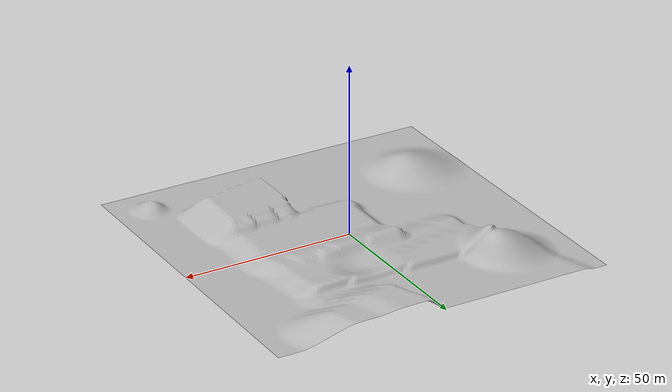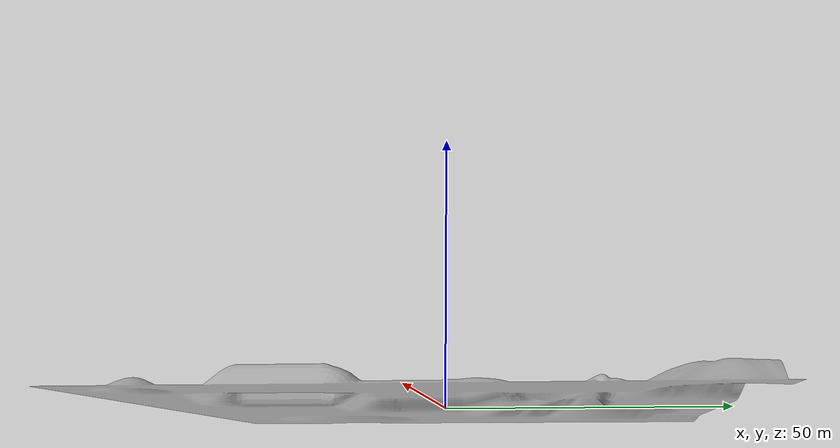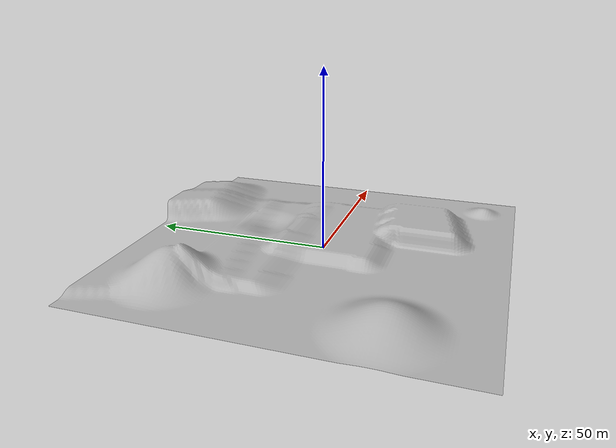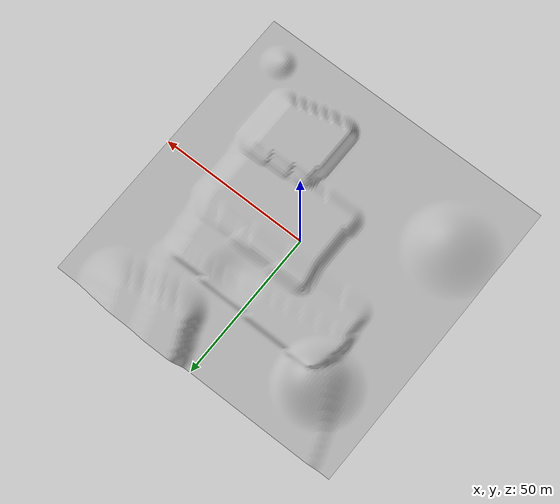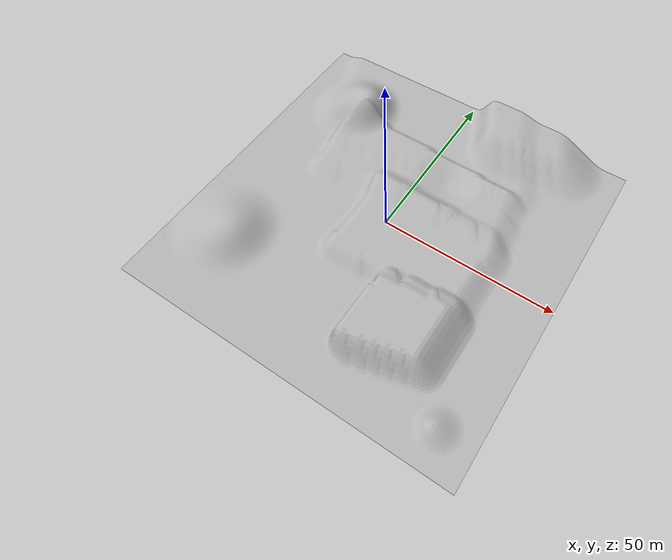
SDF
<?xml version="1.0" ?>
<sdf version="1.5">
  <model name="terrain2">
    <pose>0 0 0 0 0 0</pose>
    <static>true</static>
    <link name="body">
      <visual name="visual">
        <geometry>
          <mesh><uri>model://terrain2/media/terrain2.dae</uri></mesh>
        </geometry>
	<material>
          <script>
            <uri>model://terrain2/media/scripts</uri>
            <uri>model://terrain2/media/Textures</uri>
            <name>RepeatedGrass/Diffuse</name>
          </script>
        </material>
      </visual>
      <collision name="collision">
        <geometry>
          <mesh><uri>model://terrain2/media/terrain2.dae</uri></mesh>
        </geometry>
      </collision>
    </link>
  </model>
</sdf>
